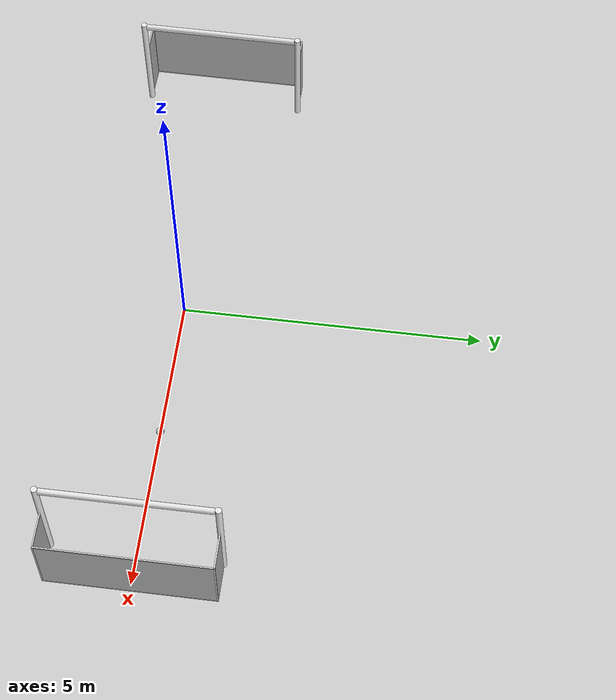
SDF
<sdf version="1.7">
 <world name="default">
  <light name="sun" type="directional">
   <pose>0 0 10 0 -0 0</pose>
   <diffuse>0.8 0.8 0.8 1</diffuse>
   <specular>0.2 0.2 0.2 1</specular>
   <attenuation>
    <range>1000</range>
    <constant>0.9</constant>
    <linear>0.01</linear>
    <quadratic>0.001</quadratic>
   </attenuation>
   <direction>-0.5 0.1 -0.9</direction>
   <spot><inner_angle>0</inner_angle><outer_angle>0</outer_angle><falloff>0</falloff></spot>
  </light>
  <model name="ground_plane">
   <static>1</static>
   <link name="link">
    <collision name="collision">
     <geometry><plane><normal>0 0 1</normal><size>100 100</size></plane></geometry>
     <surface>
      <contact><collide_bitmask>65535</collide_bitmask></contact>
      <friction><ode><mu>100</mu><mu2>50</mu2></ode></friction>
     </surface>
    </collision>
    <visual name="visual">
     <cast_shadows>0</cast_shadows>
     <geometry><plane><normal>0 0 1</normal><size>100 100</size></plane></geometry>
     <material>
      <script><uri>file://media/materials/scripts/gazebo.material</uri><name>Gazebo/Grey</name></script>
     </material>
    </visual>
   </link>
  </model>
  <gravity>0 0 -9.8</gravity>
  <magnetic_field>6e-06 2.3e-05 -4.2e-05</magnetic_field>
  <atmosphere type="adiabatic"/>
  <physics type="ode">
   <max_step_size>0.001</max_step_size>
   <real_time_factor>1</real_time_factor>
   <real_time_update_rate>1000</real_time_update_rate>
  </physics>
  <scene><ambient>0.4 0.4 0.4 1</ambient><background>0.7 0.7 0.7 1</background><shadows>1</shadows></scene>
  <spherical_coordinates>
   <surface_model>EARTH_WGS84</surface_model>
   <latitude_deg>0</latitude_deg>
   <longitude_deg>0</longitude_deg>
   <elevation>0</elevation>
   <heading_deg>0</heading_deg>
  </spherical_coordinates>
  <model name="teensize_goal">
   <static>1</static>
   <link name="left_post">
    <pose>0 1.35 0.95 0 -0 0</pose>
    <collision name="collision">
     <geometry><cylinder><radius>0.05</radius><length>1.9</length></cylinder></geometry>
    </collision>
    <visual name="visual">
     <geometry><cylinder><radius>0.05</radius><length>1.9</length></cylinder></geometry>
     <material>
      <script><uri>file://media/materials/scripts/gazebo.material</uri><name>Gazebo/White</name></script>
     </material>
    </visual>
   </link>
   <link name="left_support_horiz_lower">
    <pose>0.3 1.35 0.01 0 -0 0</pose>
    <collision name="collision"><geometry><box><size>0.6 0.02 0.02</size></box></geometry></collision>
    <visual name="visual">
     <geometry><box><size>0.6 0.02 0.02</size></box></geometry>
     <material>
      <script><uri>file://media/materials/scripts/gazebo.material</uri><name>Gazebo/White</name></script>
     </material>
    </visual>
   </link>
   <link name="left_support_horiz_upper">
    <pose>0.3 1.35 1.2 0 -0 0</pose>
    <collision name="collision"><geometry><box><size>0.6 0.02 0.02</size></box></geometry></collision>
    <visual name="visual">
     <geometry><box><size>0.6 0.02 0.02</size></box></geometry>
     <material>
      <script><uri>file://media/materials/scripts/gazebo.material</uri><name>Gazebo/White</name></script>
     </material>
    </visual>
   </link>
   <link name="left_support_vertical">
    <pose>0.6 1.35 0.6 3.14159 1.57079 3.14159</pose>
    <collision name="collision"><geometry><box><size>1.2 0.02 0.02</size></box></geometry></collision>
    <visual name="visual">
     <geometry><box><size>1.2 0.02 0.02</size></box></geometry>
     <material>
      <script><uri>file://media/materials/scripts/gazebo.material</uri><name>Gazebo/White</name></script>
     </material>
    </visual>
   </link>
   <link name="right_support_horiz_lower">
    <pose>0.3 -1.35 0.01 0 -0 0</pose>
    <collision name="collision"><geometry><box><size>0.6 0.02 0.02</size></box></geometry></collision>
    <visual name="visual">
     <geometry><box><size>0.6 0.02 0.02</size></box></geometry>
     <material>
      <script><uri>file://media/materials/scripts/gazebo.material</uri><name>Gazebo/White</name></script>
     </material>
    </visual>
   </link>
   <link name="right_support_horiz_upper">
    <pose>0.3 -1.35 1.2 0 -0 0</pose>
    <collision name="collision"><geometry><box><size>0.6 0.02 0.02</size></box></geometry></collision>
    <visual name="visual">
     <geometry><box><size>0.6 0.02 0.02</size></box></geometry>
     <material>
      <script><uri>file://media/materials/scripts/gazebo.material</uri><name>Gazebo/White</name></script>
     </material>
    </visual>
   </link>
   <link name="right_support_vertical">
    <pose>0.6 -1.35 0.6 3.14159 1.57079 3.14159</pose>
    <collision name="collision"><geometry><box><size>1.2 0.02 0.02</size></box></geometry></collision>
    <visual name="visual">
     <geometry><box><size>1.2 0.02 0.02</size></box></geometry>
     <material>
      <script><uri>file://media/materials/scripts/gazebo.material</uri><name>Gazebo/White</name></script>
     </material>
    </visual>
   </link>
   <link name="center_support_horiz_lower">
    <pose>0.6 0 0.01 3.14159 1.57079 3.14159</pose>
    <collision name="collision"><geometry><box><size>0.02 2.7 0.02</size></box></geometry></collision>
    <visual name="visual">
     <geometry><box><size>0.02 2.7 0.02</size></box></geometry>
     <material>
      <script><uri>file://media/materials/scripts/gazebo.material</uri><name>Gazebo/White</name></script>
     </material>
    </visual>
   </link>
   <link name="center_support_horiz_upper">
    <pose>0.6 0 1.2 3.14159 1.57079 3.14159</pose>
    <collision name="collision"><geometry><box><size>0.02 2.7 0.02</size></box></geometry></collision>
    <visual name="visual">
     <geometry><box><size>0.02 2.7 0.02</size></box></geometry>
     <material>
      <script><uri>file://media/materials/scripts/gazebo.material</uri><name>Gazebo/White</name></script>
     </material>
    </visual>
   </link>
   <link name="right_post">
    <pose>0 -1.35 0.95 0 -0 0</pose>
    <collision name="collision">
     <geometry><cylinder><radius>0.05</radius><length>1.9</length></cylinder></geometry>
    </collision>
    <visual name="visual">
     <geometry><cylinder><radius>0.05</radius><length>1.9</length></cylinder></geometry>
     <material>
      <script><uri>file://media/materials/scripts/gazebo.material</uri><name>Gazebo/White</name></script>
     </material>
    </visual>
   </link>
   <link name="crossbar">
    <pose>0 0 1.85 1.57 1.57 0</pose>
    <collision name="collision">
     <geometry><cylinder><radius>0.05</radius><length>2.6</length></cylinder></geometry>
    </collision>
    <visual name="visual">
     <geometry><cylinder><radius>0.05</radius><length>2.6</length></cylinder></geometry>
     <material>
      <script><uri>file://media/materials/scripts/gazebo.material</uri><name>Gazebo/White</name></script>
     </material>
    </visual>
   </link>
   <link name="center_net">
    <pose>0.6 0 0.6 0 -0 0</pose>
    <collision name="collision"><geometry><box><size>0.01 2.7 1.2</size></box></geometry></collision>
    <visual name="visual">
     <geometry><box><size>0.01 2.7 1.2</size></box></geometry>
     <material>
      <script>
       <uri>model://teensize_goal/materials/scripts/</uri>
       <uri>model://teensize_goal/materials/textures/</uri>
       <name>RoboCup/Net</name>
      </script>
     </material>
    </visual>
   </link>
   <link name="left_net">
    <pose>0.3 1.35 0.6 0 -0 0</pose>
    <collision name="collision"><geometry><box><size>0.6 0.01 1.2</size></box></geometry></collision>
    <visual name="visual">
     <geometry><box><size>0.6 0.01 1.2</size></box></geometry>
     <material>
      <script>
       <uri>model://teensize_goal/materials/scripts/</uri>
       <uri>model://teensize_goal/materials/textures/</uri>
       <name>RoboCup/Net</name>
      </script>
     </material>
    </visual>
   </link>
   <link name="right_net">
    <pose>0.3 -1.35 0.6 0 -0 0</pose>
    <collision name="collision"><geometry><box><size>0.6 0.01 1.2</size></box></geometry></collision>
    <visual name="visual">
     <geometry><box><size>0.6 0.01 1.2</size></box></geometry>
     <material>
      <script>
       <uri>model://teensize_goal/materials/scripts/</uri>
       <uri>model://teensize_goal/materials/textures/</uri>
       <name>RoboCup/Net</name>
      </script>
     </material>
    </visual>
   </link>
   <pose>4.50107 0.00233 0 0 -0 0</pose>
  </model>
  <model name="teensize_goal_0">
   <static>1</static>
   <link name="left_post">
    <pose>0 1.35 0.95 0 -0 0</pose>
    <collision name="collision">
     <geometry><cylinder><radius>0.05</radius><length>1.9</length></cylinder></geometry>
    </collision>
    <visual name="visual">
     <geometry><cylinder><radius>0.05</radius><length>1.9</length></cylinder></geometry>
     <material>
      <script><uri>file://media/materials/scripts/gazebo.material</uri><name>Gazebo/White</name></script>
     </material>
    </visual>
   </link>
   <link name="left_support_horiz_lower">
    <pose>0.3 1.35 0.01 0 -0 0</pose>
    <collision name="collision"><geometry><box><size>0.6 0.02 0.02</size></box></geometry></collision>
    <visual name="visual">
     <geometry><box><size>0.6 0.02 0.02</size></box></geometry>
     <material>
      <script><uri>file://media/materials/scripts/gazebo.material</uri><name>Gazebo/White</name></script>
     </material>
    </visual>
   </link>
   <link name="left_support_horiz_upper">
    <pose>0.3 1.35 1.2 0 -0 0</pose>
    <collision name="collision"><geometry><box><size>0.6 0.02 0.02</size></box></geometry></collision>
    <visual name="visual">
     <geometry><box><size>0.6 0.02 0.02</size></box></geometry>
     <material>
      <script><uri>file://media/materials/scripts/gazebo.material</uri><name>Gazebo/White</name></script>
     </material>
    </visual>
   </link>
   <link name="left_support_vertical">
    <pose>0.6 1.35 0.6 3.14159 1.57079 3.14159</pose>
    <collision name="collision"><geometry><box><size>1.2 0.02 0.02</size></box></geometry></collision>
    <visual name="visual">
     <geometry><box><size>1.2 0.02 0.02</size></box></geometry>
     <material>
      <script><uri>file://media/materials/scripts/gazebo.material</uri><name>Gazebo/White</name></script>
     </material>
    </visual>
   </link>
   <link name="right_support_horiz_lower">
    <pose>0.3 -1.35 0.01 0 -0 0</pose>
    <collision name="collision"><geometry><box><size>0.6 0.02 0.02</size></box></geometry></collision>
    <visual name="visual">
     <geometry><box><size>0.6 0.02 0.02</size></box></geometry>
     <material>
      <script><uri>file://media/materials/scripts/gazebo.material</uri><name>Gazebo/White</name></script>
     </material>
    </visual>
   </link>
   <link name="right_support_horiz_upper">
    <pose>0.3 -1.35 1.2 0 -0 0</pose>
    <collision name="collision"><geometry><box><size>0.6 0.02 0.02</size></box></geometry></collision>
    <visual name="visual">
     <geometry><box><size>0.6 0.02 0.02</size></box></geometry>
     <material>
      <script><uri>file://media/materials/scripts/gazebo.material</uri><name>Gazebo/White</name></script>
     </material>
    </visual>
   </link>
   <link name="right_support_vertical">
    <pose>0.6 -1.35 0.6 3.14159 1.57079 3.14159</pose>
    <collision name="collision"><geometry><box><size>1.2 0.02 0.02</size></box></geometry></collision>
    <visual name="visual">
     <geometry><box><size>1.2 0.02 0.02</size></box></geometry>
     <material>
      <script><uri>file://media/materials/scripts/gazebo.material</uri><name>Gazebo/White</name></script>
     </material>
    </visual>
   </link>
   <link name="center_support_horiz_lower">
    <pose>0.6 0 0.01 3.14159 1.57079 3.14159</pose>
    <collision name="collision"><geometry><box><size>0.02 2.7 0.02</size></box></geometry></collision>
    <visual name="visual">
     <geometry><box><size>0.02 2.7 0.02</size></box></geometry>
     <material>
      <script><uri>file://media/materials/scripts/gazebo.material</uri><name>Gazebo/White</name></script>
     </material>
    </visual>
   </link>
   <link name="center_support_horiz_upper">
    <pose>0.6 0 1.2 3.14159 1.57079 3.14159</pose>
    <collision name="collision"><geometry><box><size>0.02 2.7 0.02</size></box></geometry></collision>
    <visual name="visual">
     <geometry><box><size>0.02 2.7 0.02</size></box></geometry>
     <material>
      <script><uri>file://media/materials/scripts/gazebo.material</uri><name>Gazebo/White</name></script>
     </material>
    </visual>
   </link>
   <link name="right_post">
    <pose>0 -1.35 0.95 0 -0 0</pose>
    <collision name="collision">
     <geometry><cylinder><radius>0.05</radius><length>1.9</length></cylinder></geometry>
    </collision>
    <visual name="visual">
     <geometry><cylinder><radius>0.05</radius><length>1.9</length></cylinder></geometry>
     <material>
      <script><uri>file://media/materials/scripts/gazebo.material</uri><name>Gazebo/White</name></script>
     </material>
    </visual>
   </link>
   <link name="crossbar">
    <pose>0 0 1.85 1.57 1.57 0</pose>
    <collision name="collision">
     <geometry><cylinder><radius>0.05</radius><length>2.6</length></cylinder></geometry>
    </collision>
    <visual name="visual">
     <geometry><cylinder><radius>0.05</radius><length>2.6</length></cylinder></geometry>
     <material>
      <script><uri>file://media/materials/scripts/gazebo.material</uri><name>Gazebo/White</name></script>
     </material>
    </visual>
   </link>
   <link name="center_net">
    <pose>0.6 0 0.6 0 -0 0</pose>
    <collision name="collision"><geometry><box><size>0.01 2.7 1.2</size></box></geometry></collision>
    <visual name="visual">
     <geometry><box><size>0.01 2.7 1.2</size></box></geometry>
     <material>
      <script>
       <uri>model://teensize_goal/materials/scripts/</uri>
       <uri>model://teensize_goal/materials/textures/</uri>
       <name>RoboCup/Net</name>
      </script>
     </material>
    </visual>
   </link>
   <link name="left_net">
    <pose>0.3 1.35 0.6 0 -0 0</pose>
    <collision name="collision"><geometry><box><size>0.6 0.01 1.2</size></box></geometry></collision>
    <visual name="visual">
     <geometry><box><size>0.6 0.01 1.2</size></box></geometry>
     <material>
      <script>
       <uri>model://teensize_goal/materials/scripts/</uri>
       <uri>model://teensize_goal/materials/textures/</uri>
       <name>RoboCup/Net</name>
      </script>
     </material>
    </visual>
   </link>
   <link name="right_net">
    <pose>0.3 -1.35 0.6 0 -0 0</pose>
    <collision name="collision"><geometry><box><size>0.6 0.01 1.2</size></box></geometry></collision>
    <visual name="visual">
     <geometry><box><size>0.6 0.01 1.2</size></box></geometry>
     <material>
      <script>
       <uri>model://teensize_goal/materials/scripts/</uri>
       <uri>model://teensize_goal/materials/textures/</uri>
       <name>RoboCup/Net</name>
      </script>
     </material>
    </visual>
   </link>
   <pose>-4.55259 -0.005151 -0 0 -0 3.13062</pose>
  </model>
  <model name="teensize_ball_0">
   <pose>2.3765 0.000805 0.066 0 -0 0</pose>
   <static>0</static>
   <link name="ball">
    <velocity_decay><linear>0</linear><angular>0.0008</angular></velocity_decay>
    <inertial>
     <mass>0.19</mass>
     <inertia><ixx>0.00156</ixx><iyy>0.00156</iyy><izz>0.00156</izz><ixy>0</ixy><ixz>0</ixz><iyz>0</iyz></inertia>
    </inertial>
    <collision name="collision"><geometry><sphere><radius>0.066</radius></sphere></geometry></collision>
    <visual name="visual">
     <geometry><sphere><radius>0.066</radius></sphere></geometry>
     <material>
      <script>
       <uri>model://teensize_ball/materials/scripts</uri>
       <uri>model://teensize_ball/materials/textures</uri>
       <name>RoboCup/Ball</name>
      </script>
     </material>
    </visual>
   </link>
  </model>
 </world>
</sdf>
